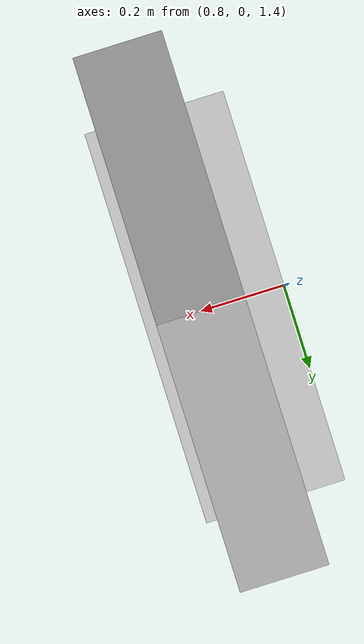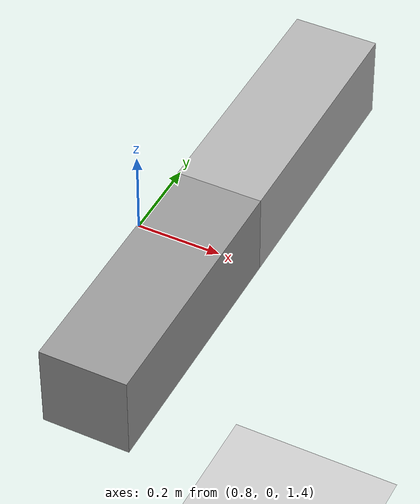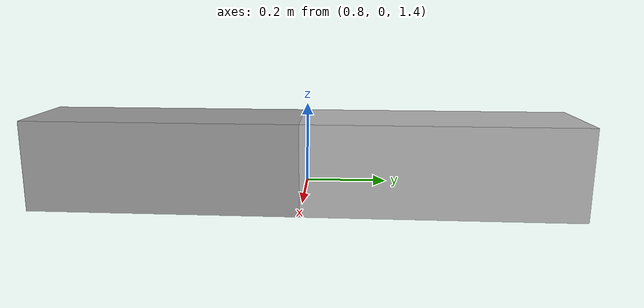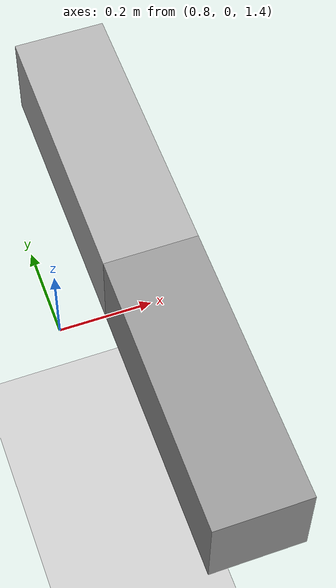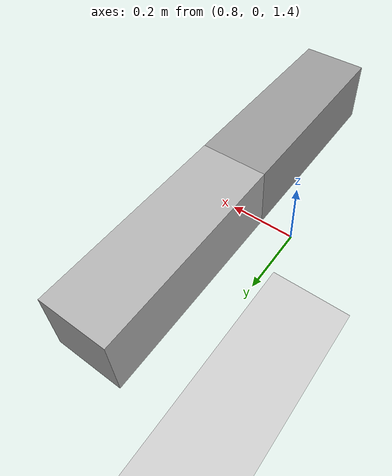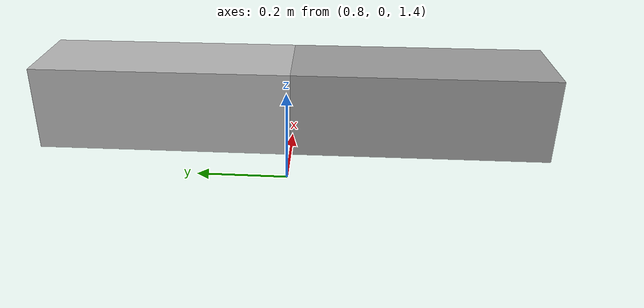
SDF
<?xml version="1.0"?>
<sdf version="1.6">
  <world name="default">
    <!-- physics engine -->
    <physics type="ode">
      <max_step_size>0.001</max_step_size>
      <real_time_factor>1</real_time_factor>
      <real_time_update_rate>1000</real_time_update_rate>
      <magnetic_field>34 0 -36</magnetic_field>
      <gravity>0 0 -9.8</gravity>
    </physics>

    <!-- coordinate -->
    <spherical_coordinates>
      <surface_model>EARTH_WGS84</surface_model>
      <latitude_deg>0</latitude_deg>
      <longitude_deg>0</longitude_deg>
      <elevation>0</elevation>
      <heading_deg>0</heading_deg>
    </spherical_coordinates>

    <!-- ground plane -->
    <include>
      <uri>model://ground_plane</uri>
    </include>

    <!-- sun -->
    <scene>
      <sky>
        <clouds>
          <speed>12</speed>
        </clouds>
      </sky>
   </scene>
    <include>
      <uri>model://sun</uri>
    </include>

    <!-- wall -->
    <include>
      <uri>model://box_gray07</uri>
      <name>box_1</name>
      <pose>1 0.3 1 0 0 0</pose>
    </include>

    <include>
      <uri>model://box_gray06</uri>
      <name>box_2</name>
      <pose>1 -0.3 1 0 0 0</pose>
    </include>

    <!-- light -->
    <light name="additional_light_x" type="directional">
      <diffuse>1.0 1.0 1.0 1</diffuse>
      <specular>0.1 0.1 0.1 1</specular>
      <direction>1.0 0 0</direction>
      <attenuation>
	<range>100</range>
	<constant>0.9</constant>
	<linear>0.01</linear>
	<quadratic>0.001</quadratic>
      </attenuation>
    </light>

    <light name="additional_light_x_2" type="directional">
      <diffuse>1.0 1.0 1.0 1</diffuse>
      <specular>0.1 0.1 0.1 1</specular>
      <direction>1.0 0 0</direction>
      <attenuation>
	<range>100</range>
	<constant>0.9</constant>
	<linear>0.01</linear>
	<quadratic>0.001</quadratic>
      </attenuation>
    </light>

    <light name="additional_light_-x" type="directional">
      <diffuse>1.0 1.0 1.0 1</diffuse>
      <specular>0.1 0.1 0.1 1</specular>
      <direction>-1.0 0 0</direction>
      <attenuation>
	<range>100</range>
	<constant>0.9</constant>
	<linear>0.01</linear>
	<quadratic>0.001</quadratic>
      </attenuation>
    </light>

    <light name="additional_light_y" type="directional">
      <diffuse>1.0 1.0 1.0 1</diffuse>
      <specular>0.1 0.1 0.1 1</specular>
      <direction>0 1.0 0</direction>
      <attenuation>
	<range>100</range>
	<constant>0.9</constant>
	<linear>0.01</linear>
	<quadratic>0.001</quadratic>
      </attenuation>
    </light>

    <light name="additional_light_-y" type="directional">
      <diffuse>1.0 1.0 1.0 1</diffuse>
      <specular>0.1 0.1 0.1 1</specular>
      <direction>0 -1.0 0</direction>
      <attenuation>
	<range>100</range>
	<constant>0.9</constant>
	<linear>0.01</linear>
	<quadratic>0.001</quadratic>
      </attenuation>
    </light>

    <light name="additional_light_-z" type="directional">
      <diffuse>1.0 1.0 1.0 1</diffuse>
      <specular>0.1 0.1 0.1 1</specular>
      <direction>0 0 -1.0</direction>
      <attenuation>
	<range>100</range>
	<constant>0.9</constant>
	<linear>0.01</linear>
	<quadratic>0.001</quadratic>
      </attenuation>
    </light>

  </world>
</sdf>

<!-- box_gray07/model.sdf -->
<sdf version="1.6">
  <model name="box_gray07">
    <static>true</static>
    <link name="box_link">
      <pose>0 0 0.5 0 0 0</pose>
      <collision name="collision">
        <geometry>
          <box>
	    <size>0.2 0.6 0.2</size>
          </box>
        </geometry>
      </collision>
      <visual name="visual">
        <geometry>
	  <box>
	    <size>0.2 0.6 0.2</size>
          </box>
        </geometry>
        <material>
          <ambient>0.7 0.7 0.7 1</ambient>
        </material>
      </visual>
    </link>
  </model>
</sdf>

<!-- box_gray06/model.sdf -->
<sdf version="1.6">
  <model name="box_gray06">
    <static>true</static>
    <link name="box_link">
      <pose>0 0 0.5 0 0 0</pose>
      <collision name="collision">
        <geometry>
          <box>
	    <size>0.2 0.6 0.2</size>
          </box>
        </geometry>
      </collision>
      <visual name="visual">
        <geometry>
	  <box>
	    <size>0.2 0.6 0.2</size>
          </box>
        </geometry>
        <material>
          <ambient>0.6 0.6 0.6 1</ambient>
        </material>
      </visual>
    </link>
  </model>
</sdf>
